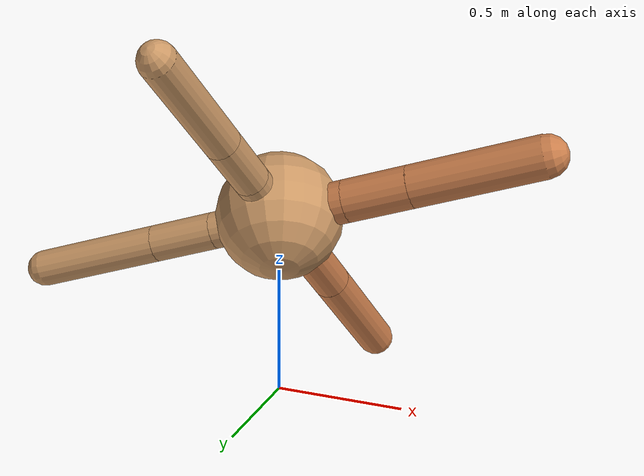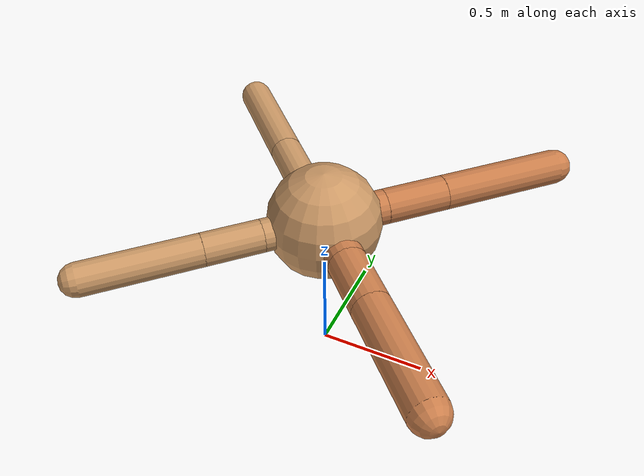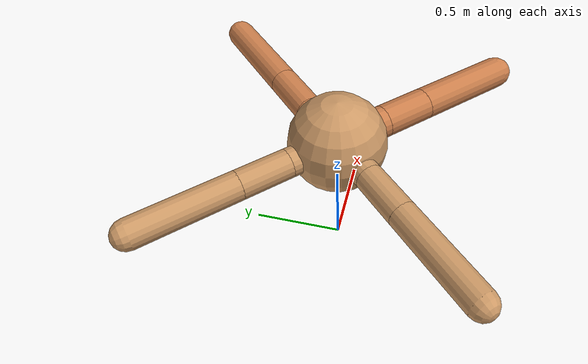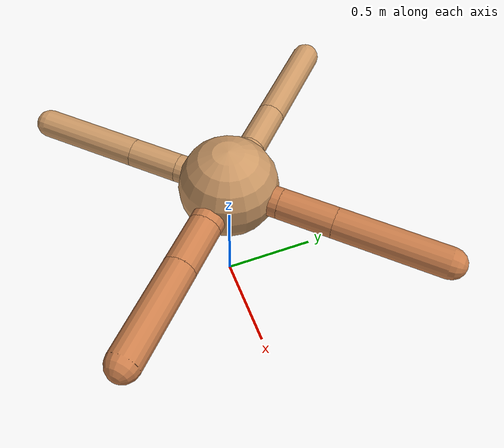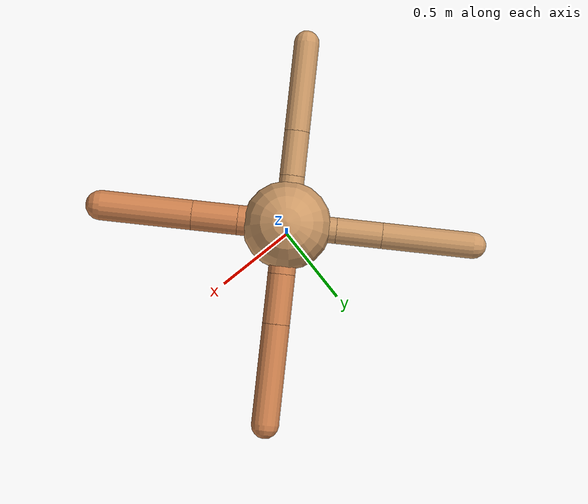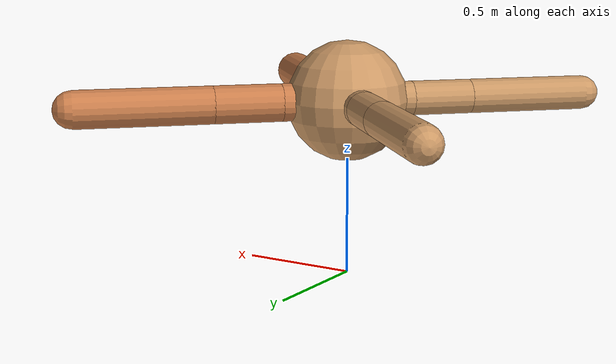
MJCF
<?xml version="1.0" ?>
<mujoco model="ant">

	<compiler angle="degree" coordinate="local" inertiafromgeom="true"/>

	<option integrator="RK4" timestep="0.01"/>

	<custom>

		<numeric data="0.0 0.0 0.55 1.0 0.0 0.0 0.0 0.0 1.0 0.0 -1.0 0.0 -1.0 0.0 1.0" name="init_qpos"/>

	</custom>

	<default>

		<joint armature="1" damping="1" limited="true"/>

		<geom conaffinity="0" condim="3" density="5.0" friction="1.5 0.1 0.1" margin="0.01" rgba="0.8 0.6 0.4 1"/>

	</default>

	<worldbody>

		<body name="torso" pos="0 0 0.75">

			<geom name="torso_geom" pos="0 0 0" size="0.25600166858148193" type="sphere"/>

			<!--joint armature="0" damping="0" limited="false" margin="0.01" name="root" pos="0 0 0" type="free"/-->

			<body name="front_left_leg" pos="0 0 0">

				<geom fromto="0 0 0 0.2 0.2 0" name="aux_1_geom" size="0.07962616665260899" type="capsule" rgba=".8 .5 .3 1"/>

				<body name="aux_1" pos="0.2 0.2 0">

					<joint axis="0 0 1" name="hip_1" pos="0.0 0.0 0.0" range="-40 40" type="hinge"/>

					<geom fromto="0 0 0 0.2026924414879032 0.2026924414879032 0" name="left_leg_geom" size="0.07962616665260899" type="capsule" rgba=".8 .5 .3 1"/>

					<body pos="0.2026924414879032 0.2026924414879032 0" name="front_left_foot">

						<joint axis="-1 1 0" name="ankle_1" pos="0.0 0.0 0.0" range="30 100" type="hinge"/>

						<geom fromto="0 0 0 0.4053848829758064 0.4053848829758064 0" name="left_ankle_geom" size="0.07962616665260899" type="capsule" rgba=".8 .5 .3 1"/>

					</body>

				</body>

			</body>

			<body name="front_right_leg" pos="0 0 0">

				<geom fromto="0 0 0 -0.2 0.2 0" name="aux_2_geom" size="0.07526484637148666" type="capsule"/>

				<body name="aux_2" pos="-0.2 0.2 0">

					<joint axis="0 0 1" name="hip_2" pos="0.0 0.0 0.0" range="-40 40" type="hinge"/>

					<geom fromto="0 0 0 -0.186013330428427 0.186013330428427 0" name="right_leg_geom" size="0.07526484637148666" type="capsule"/>

					<body pos="-0.186013330428427 0.186013330428427 0" name="front_right_foot">

						<joint axis="1 1 0" name="ankle_2" pos="0.0 0.0 0.0" range="-100 -30" type="hinge"/>

						<geom fromto="0 0 0 -0.372026660856854 0.372026660856854 0" name="right_ankle_geom" size="0.07526484637148666" type="capsule"/>

					</body>

				</body>

			</body>

			<body name="left_back_leg" pos="0 0 0">

				<geom fromto="0 0 0 -0.2 -0.2 0" name="aux_3_geom" size="0.07319743913243307" type="capsule"/>

				<body name="aux_3" pos="-0.2 -0.2 0">

					<joint axis="0 0 1" name="hip_3" pos="0.0 0.0 0.0" range="-40 40" type="hinge"/>

					<geom fromto="0 0 0 -0.18335059647554094 -0.18335059647554094 0" name="back_leg_geom" size="0.07319743913243307" type="capsule"/>

					<body pos="-0.18335059647554094 -0.18335059647554094 0" name="left_back_foot">

						<joint axis="-1 1 0" name="ankle_3" pos="0.0 0.0 0.0" range="-100 -30" type="hinge"/>

						<geom fromto="0 0 0 -0.3667011929510819 -0.3667011929510819 0" name="third_ankle_geom" size="0.07319743913243307" type="capsule"/>

					</body>

				</body>

			</body>

			<body name="right_back_leg" pos="0 0 0">

				<geom fromto="0 0 0 0.2 -0.2 0" name="aux_4_geom" size="0.08665596479867395" type="capsule" rgba=".8 .5 .3 1"/>

				<body name="aux_4" pos="0.2 -0.2 0">

					<joint axis="0 0 1" name="hip_4" pos="0.0 0.0 0.0" range="-40 40" type="hinge"/>

					<geom fromto="0 0 0 0.18656682715158474 -0.18656682715158474 0" name="rightback_leg_geom" size="0.08665596479867395" type="capsule" rgba=".8 .5 .3 1"/>

					<body pos="0.18656682715158474 -0.18656682715158474 0" name="right_back_foot">

						<joint axis="1 1 0" name="ankle_4" pos="0.0 0.0 0.0" range="30 100" type="hinge"/>

						<geom fromto="0 0 0 0.37313365430316947 -0.37313365430316947 0" name="fourth_ankle_geom" size="0.08665596479867395" type="capsule" rgba=".8 .5 .3 1"/>

					</body>

				</body>

			</body>

		</body>

	</worldbody>

	<actuator>

		<motor ctrllimited="true" ctrlrange="-1.0 1.0" joint="hip_4" gear="150"/>

		<motor ctrllimited="true" ctrlrange="-1.0 1.0" joint="ankle_4" gear="150"/>

		<motor ctrllimited="true" ctrlrange="-1.0 1.0" joint="hip_1" gear="150"/>

		<motor ctrllimited="true" ctrlrange="-1.0 1.0" joint="ankle_1" gear="150"/>

		<motor ctrllimited="true" ctrlrange="-1.0 1.0" joint="hip_2" gear="150"/>

		<motor ctrllimited="true" ctrlrange="-1.0 1.0" joint="ankle_2" gear="150"/>

		<motor ctrllimited="true" ctrlrange="-1.0 1.0" joint="hip_3" gear="150"/>

		<motor ctrllimited="true" ctrlrange="-1.0 1.0" joint="ankle_3" gear="150"/>

	</actuator>

</mujoco>
